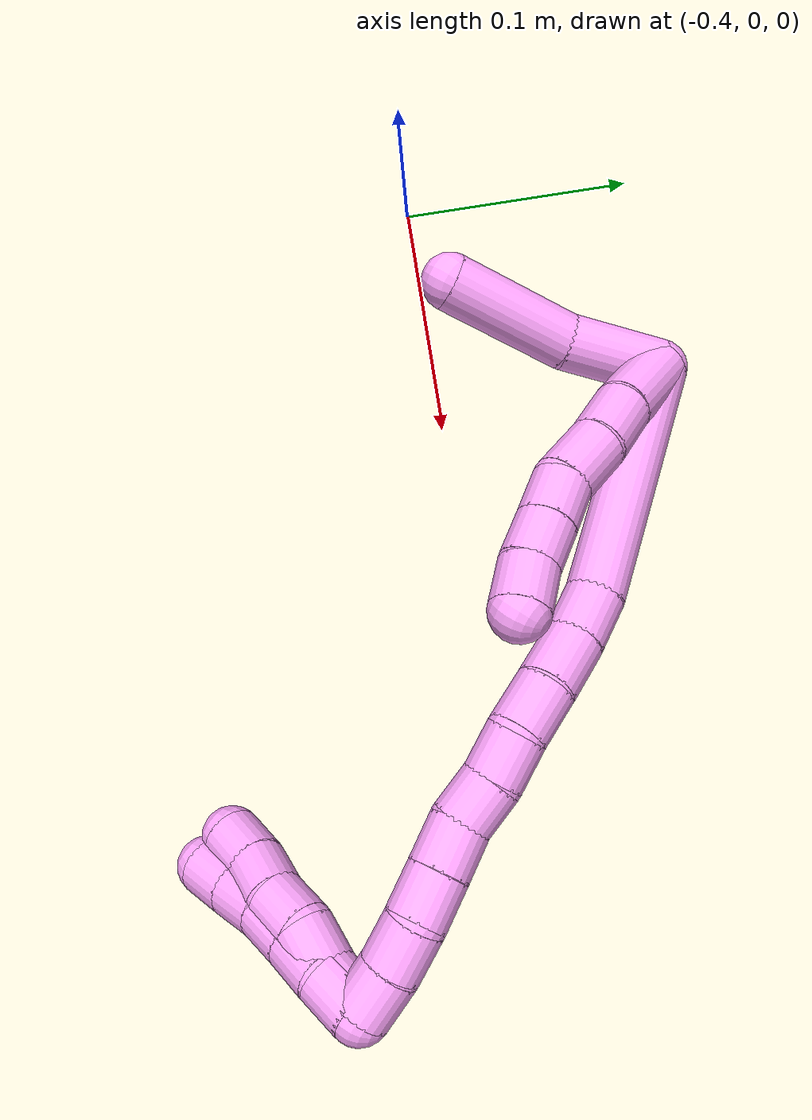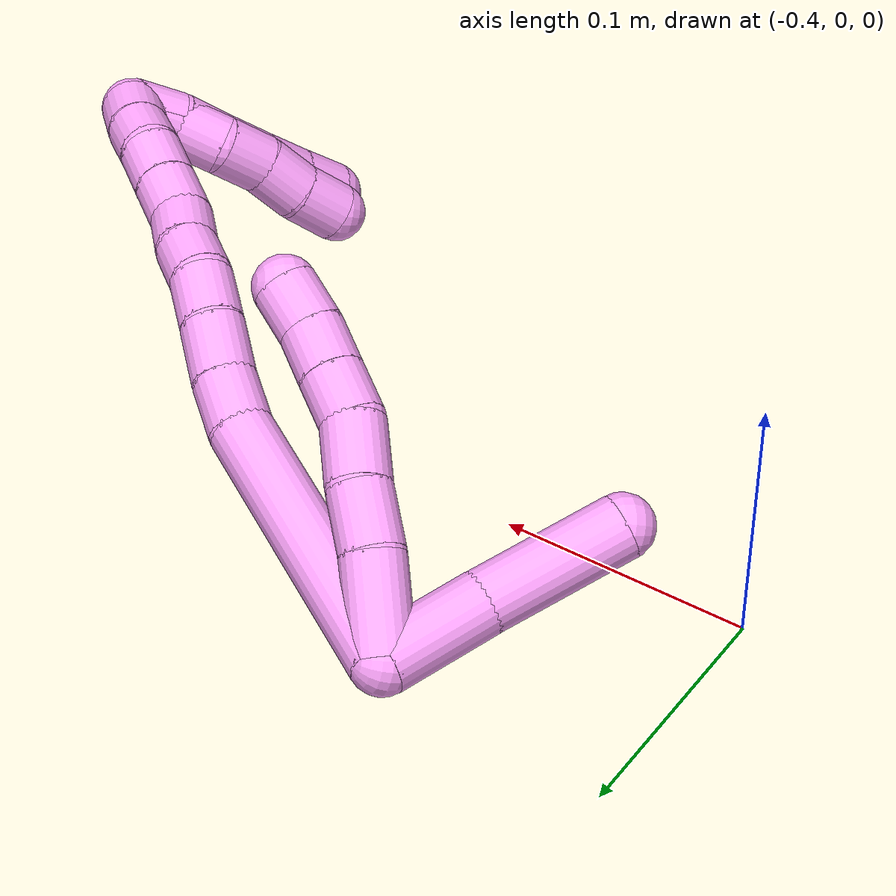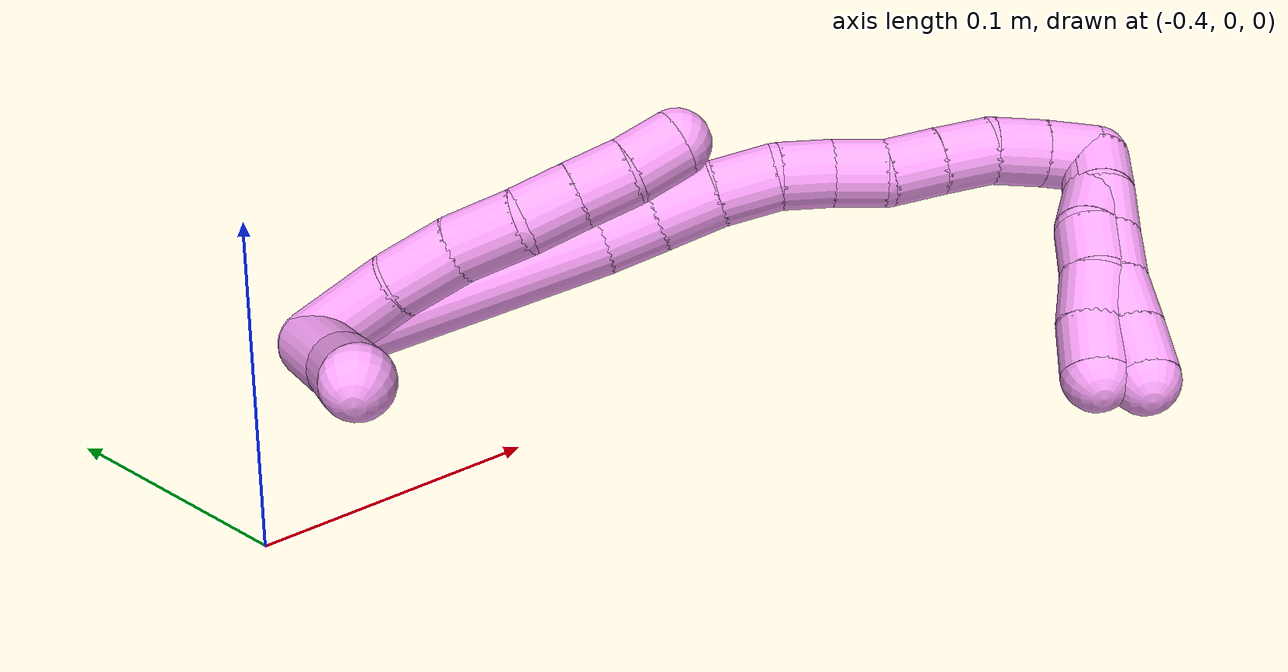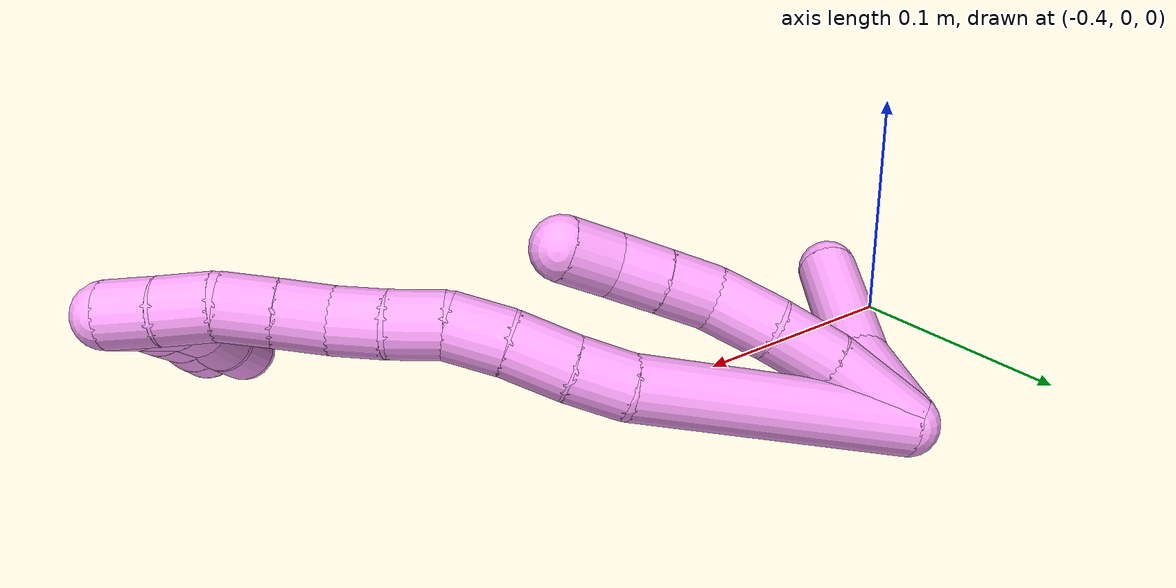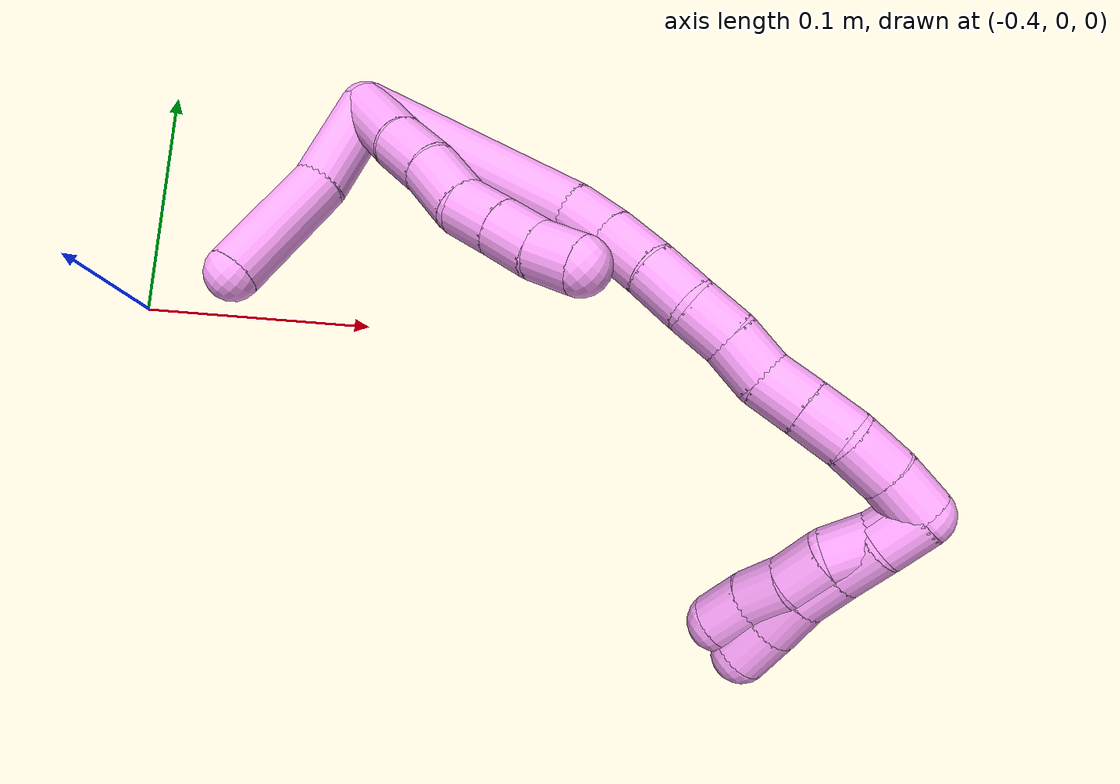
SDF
<sdf version="1.7">
 <world name="default">
  <model name="4">
   <static>0</static>
   <link name="4">
    <collision name="collision-cylinder-e_1_2_8">
     <pose>0.003543 -0.018728 0.001934 1.46791 0.186019 0.167892</pose>
     <geometry><cylinder><radius>0.0125</radius><length>0.038315</length></cylinder></geometry>
     <surface>
      <friction><ode><mu>1.16</mu><mu2>1.16</mu2><slip1>0</slip1><slip2>0</slip2></ode></friction>
      <contact><ode><kp>1e+06</kp><kd>1</kd><max_vel>0</max_vel><min_depth>0.001</min_depth></ode></contact>
     </surface>
    </collision>
    <visual name="visual-cylinder-e_1_2_8">
     <pose>0.003543 -0.018728 0.001934 1.46791 0.186019 0.167892</pose>
     <geometry><cylinder><radius>0.0125</radius><length>0.038315</length></cylinder></geometry>
     <material><ambient>1 0.65098 0.996078 1</ambient></material>
    </visual>
    <collision name="collision-cylinder-e_2_8_9">
     <pose>0.010996 -0.04936 0.0059 1.40167 0.313078 0.26477</pose>
     <geometry><cylinder><radius>0.0125</radius><length>0.025388</length></cylinder></geometry>
     <surface>
      <friction><ode><mu>1.16</mu><mu2>1.16</mu2><slip1>0</slip1><slip2>0</slip2></ode></friction>
      <contact><ode><kp>1e+06</kp><kd>1</kd><max_vel>0</max_vel><min_depth>0.001</min_depth></ode></contact>
     </surface>
    </collision>
    <visual name="visual-cylinder-e_2_8_9">
     <pose>0.010996 -0.04936 0.0059 1.40167 0.313078 0.26477</pose>
     <geometry><cylinder><radius>0.0125</radius><length>0.025388</length></cylinder></geometry>
     <material><ambient>1 0.65098 0.996078 1</ambient></material>
    </visual>
    <collision name="collision-cylinder-e_3_9_10">
     <pose>0.019763 -0.07322 0.008281 1.54164 0.385761 0.374937</pose>
     <geometry><cylinder><radius>0.0125</radius><length>0.02582</length></cylinder></geometry>
     <surface>
      <friction><ode><mu>1.16</mu><mu2>1.16</mu2><slip1>0</slip1><slip2>0</slip2></ode></friction>
      <contact><ode><kp>1e+06</kp><kd>1</kd><max_vel>0</max_vel><min_depth>0.001</min_depth></ode></contact>
     </surface>
    </collision>
    <visual name="visual-cylinder-e_3_9_10">
     <pose>0.019763 -0.07322 0.008281 1.54164 0.385761 0.374937</pose>
     <geometry><cylinder><radius>0.0125</radius><length>0.02582</length></cylinder></geometry>
     <material><ambient>1 0.65098 0.996078 1</ambient></material>
    </visual>
    <collision name="collision-cylinder-e_4_10_11">
     <pose>0.029295 -0.09373 0.01174 1.22208 0.474498 0.335566</pose>
     <geometry><cylinder><radius>0.0125</radius><length>0.020464</length></cylinder></geometry>
     <surface>
      <friction><ode><mu>1.16</mu><mu2>1.16</mu2><slip1>0</slip1><slip2>0</slip2></ode></friction>
      <contact><ode><kp>1e+06</kp><kd>1</kd><max_vel>0</max_vel><min_depth>0.001</min_depth></ode></contact>
     </surface>
    </collision>
    <visual name="visual-cylinder-e_4_10_11">
     <pose>0.029295 -0.09373 0.01174 1.22208 0.474498 0.335566</pose>
     <geometry><cylinder><radius>0.0125</radius><length>0.020464</length></cylinder></geometry>
     <material><ambient>1 0.65098 0.996078 1</ambient></material>
    </visual>
    <collision name="collision-cylinder-e_5_11_12">
     <pose>0.038654 -0.110641 0.017723 1.23967 0.487403 0.351237</pose>
     <geometry><cylinder><radius>0.0125</radius><length>0.020004</length></cylinder></geometry>
     <surface>
      <friction><ode><mu>1.16</mu><mu2>1.16</mu2><slip1>0</slip1><slip2>0</slip2></ode></friction>
      <contact><ode><kp>1e+06</kp><kd>1</kd><max_vel>0</max_vel><min_depth>0.001</min_depth></ode></contact>
     </surface>
    </collision>
    <visual name="visual-cylinder-e_5_11_12">
     <pose>0.038654 -0.110641 0.017723 1.23967 0.487403 0.351237</pose>
     <geometry><cylinder><radius>0.0125</radius><length>0.020004</length></cylinder></geometry>
     <material><ambient>1 0.65098 0.996078 1</ambient></material>
    </visual>
    <collision name="collision-cylinder-e_6_12_6">
     <pose>0.047616 -0.126912 0.024974 1.06547 0.441719 0.263224</pose>
     <geometry><cylinder><radius>0.0125</radius><length>0.020009</length></cylinder></geometry>
     <surface>
      <friction><ode><mu>1.16</mu><mu2>1.16</mu2><slip1>0</slip1><slip2>0</slip2></ode></friction>
      <contact><ode><kp>1e+06</kp><kd>1</kd><max_vel>0</max_vel><min_depth>0.001</min_depth></ode></contact>
     </surface>
    </collision>
    <visual name="visual-cylinder-e_6_12_6">
     <pose>0.047616 -0.126912 0.024974 1.06547 0.441719 0.263224</pose>
     <geometry><cylinder><radius>0.0125</radius><length>0.020009</length></cylinder></geometry>
     <material><ambient>1 0.65098 0.996078 1</ambient></material>
    </visual>
    <collision name="collision-cylinder-e_1_2_13">
     <pose>-0.000425 -0.011804 -0.017999 2.56113 -0.019736 -0.06606</pose>
     <geometry><cylinder><radius>0.0125</radius><length>0.043057</length></cylinder></geometry>
     <surface>
      <friction><ode><mu>1.16</mu><mu2>1.16</mu2><slip1>0</slip1><slip2>0</slip2></ode></friction>
      <contact><ode><kp>1e+06</kp><kd>1</kd><max_vel>0</max_vel><min_depth>0.001</min_depth></ode></contact>
     </surface>
    </collision>
    <visual name="visual-cylinder-e_1_2_13">
     <pose>-0.000425 -0.011804 -0.017999 2.56113 -0.019736 -0.06606</pose>
     <geometry><cylinder><radius>0.0125</radius><length>0.043057</length></cylinder></geometry>
     <material><ambient>1 0.65098 0.996078 1</ambient></material>
    </visual>
    <collision name="collision-cylinder-e_2_13_5">
     <pose>-0.00748 -0.03903 -0.058994 2.55086 -0.235032 -0.740267</pose>
     <geometry><cylinder><radius>0.0125</radius><length>0.056943</length></cylinder></geometry>
     <surface>
      <friction><ode><mu>1.16</mu><mu2>1.16</mu2><slip1>0</slip1><slip2>0</slip2></ode></friction>
      <contact><ode><kp>1e+06</kp><kd>1</kd><max_vel>0</max_vel><min_depth>0.001</min_depth></ode></contact>
     </surface>
    </collision>
    <visual name="visual-cylinder-e_2_13_5">
     <pose>-0.00748 -0.03903 -0.058994 2.55086 -0.235032 -0.740267</pose>
     <geometry><cylinder><radius>0.0125</radius><length>0.056943</length></cylinder></geometry>
     <material><ambient>1 0.65098 0.996078 1</ambient></material>
    </visual>
    <collision name="collision-cylinder-e_1_2_14">
     <pose>0.032478 -0.040913 0.018867 1.1387 0.624603 0.407568</pose>
     <geometry><cylinder><radius>0.0125</radius><length>0.111079</length></cylinder></geometry>
     <surface>
      <friction><ode><mu>1.16</mu><mu2>1.16</mu2><slip1>0</slip1><slip2>0</slip2></ode></friction>
      <contact><ode><kp>1e+06</kp><kd>1</kd><max_vel>0</max_vel><min_depth>0.001</min_depth></ode></contact>
     </surface>
    </collision>
    <visual name="visual-cylinder-e_1_2_14">
     <pose>0.032478 -0.040913 0.018867 1.1387 0.624603 0.407568</pose>
     <geometry><cylinder><radius>0.0125</radius><length>0.111079</length></cylinder></geometry>
     <material><ambient>1 0.65098 0.996078 1</ambient></material>
    </visual>
    <collision name="collision-cylinder-e_2_14_15">
     <pose>0.070275 -0.091276 0.040077 1.32786 0.49997 0.394353</pose>
     <geometry><cylinder><radius>0.0125</radius><length>0.022188</length></cylinder></geometry>
     <surface>
      <friction><ode><mu>1.16</mu><mu2>1.16</mu2><slip1>0</slip1><slip2>0</slip2></ode></friction>
      <contact><ode><kp>1e+06</kp><kd>1</kd><max_vel>0</max_vel><min_depth>0.001</min_depth></ode></contact>
     </surface>
    </collision>
    <visual name="visual-cylinder-e_2_14_15">
     <pose>0.070275 -0.091276 0.040077 1.32786 0.49997 0.394353</pose>
     <geometry><cylinder><radius>0.0125</radius><length>0.022188</length></cylinder></geometry>
     <material><ambient>1 0.65098 0.996078 1</ambient></material>
    </visual>
    <collision name="collision-cylinder-e_3_15_16">
     <pose>0.080798 -0.111393 0.044076 1.41663 0.44928 0.386575</pose>
     <geometry><cylinder><radius>0.0125</radius><length>0.023968</length></cylinder></geometry>
     <surface>
      <friction><ode><mu>1.16</mu><mu2>1.16</mu2><slip1>0</slip1><slip2>0</slip2></ode></friction>
      <contact><ode><kp>1e+06</kp><kd>1</kd><max_vel>0</max_vel><min_depth>0.001</min_depth></ode></contact>
     </surface>
    </collision>
    <visual name="visual-cylinder-e_3_15_16">
     <pose>0.080798 -0.111393 0.044076 1.41663 0.44928 0.386575</pose>
     <geometry><cylinder><radius>0.0125</radius><length>0.023968</length></cylinder></geometry>
     <material><ambient>1 0.65098 0.996078 1</ambient></material>
    </visual>
    <collision name="collision-cylinder-e_4_16_17">
     <pose>0.092022 -0.131454 0.04684 1.45356 0.566665 0.506648</pose>
     <geometry><cylinder><radius>0.0125</radius><length>0.022423</length></cylinder></geometry>
     <surface>
      <friction><ode><mu>1.16</mu><mu2>1.16</mu2><slip1>0</slip1><slip2>0</slip2></ode></friction>
      <contact><ode><kp>1e+06</kp><kd>1</kd><max_vel>0</max_vel><min_depth>0.001</min_depth></ode></contact>
     </surface>
    </collision>
    <visual name="visual-cylinder-e_4_16_17">
     <pose>0.092022 -0.131454 0.04684 1.45356 0.566665 0.506648</pose>
     <geometry><cylinder><radius>0.0125</radius><length>0.022423</length></cylinder></geometry>
     <material><ambient>1 0.65098 0.996078 1</ambient></material>
    </visual>
    <collision name="collision-cylinder-e_5_17_18">
     <pose>0.105562 -0.14756 0.049069 1.40511 0.835328 0.718814</pose>
     <geometry><cylinder><radius>0.0125</radius><length>0.020286</length></cylinder></geometry>
     <surface>
      <friction><ode><mu>1.16</mu><mu2>1.16</mu2><slip1>0</slip1><slip2>0</slip2></ode></friction>
      <contact><ode><kp>1e+06</kp><kd>1</kd><max_vel>0</max_vel><min_depth>0.001</min_depth></ode></contact>
     </surface>
    </collision>
    <visual name="visual-cylinder-e_5_17_18">
     <pose>0.105562 -0.14756 0.049069 1.40511 0.835328 0.718814</pose>
     <geometry><cylinder><radius>0.0125</radius><length>0.020286</length></cylinder></geometry>
     <material><ambient>1 0.65098 0.996078 1</ambient></material>
    </visual>
    <collision name="collision-cylinder-e_6_18_19">
     <pose>0.120322 -0.161171 0.049716 1.63959 0.808315 0.859279</pose>
     <geometry><cylinder><radius>0.0125</radius><length>0.020022</length></cylinder></geometry>
     <surface>
      <friction><ode><mu>1.16</mu><mu2>1.16</mu2><slip1>0</slip1><slip2>0</slip2></ode></friction>
      <contact><ode><kp>1e+06</kp><kd>1</kd><max_vel>0</max_vel><min_depth>0.001</min_depth></ode></contact>
     </surface>
    </collision>
    <visual name="visual-cylinder-e_6_18_19">
     <pose>0.120322 -0.161171 0.049716 1.63959 0.808315 0.859279</pose>
     <geometry><cylinder><radius>0.0125</radius><length>0.020022</length></cylinder></geometry>
     <material><ambient>1 0.65098 0.996078 1</ambient></material>
    </visual>
    <collision name="collision-cylinder-e_7_19_20">
     <pose>0.133913 -0.17553 0.051266 1.30581 0.687825 0.534702</pose>
     <geometry><cylinder><radius>0.0125</radius><length>0.020011</length></cylinder></geometry>
     <surface>
      <friction><ode><mu>1.16</mu><mu2>1.16</mu2><slip1>0</slip1><slip2>0</slip2></ode></friction>
      <contact><ode><kp>1e+06</kp><kd>1</kd><max_vel>0</max_vel><min_depth>0.001</min_depth></ode></contact>
     </surface>
    </collision>
    <visual name="visual-cylinder-e_7_19_20">
     <pose>0.133913 -0.17553 0.051266 1.30581 0.687825 0.534702</pose>
     <geometry><cylinder><radius>0.0125</radius><length>0.020011</length></cylinder></geometry>
     <material><ambient>1 0.65098 0.996078 1</ambient></material>
    </visual>
    <collision name="collision-cylinder-e_8_20_21">
     <pose>0.146763 -0.19037 0.055158 1.32286 0.706549 0.559033</pose>
     <geometry><cylinder><radius>0.0125</radius><length>0.020017</length></cylinder></geometry>
     <surface>
      <friction><ode><mu>1.16</mu><mu2>1.16</mu2><slip1>0</slip1><slip2>0</slip2></ode></friction>
      <contact><ode><kp>1e+06</kp><kd>1</kd><max_vel>0</max_vel><min_depth>0.001</min_depth></ode></contact>
     </surface>
    </collision>
    <visual name="visual-cylinder-e_8_20_21">
     <pose>0.146763 -0.19037 0.055158 1.32286 0.706549 0.559033</pose>
     <geometry><cylinder><radius>0.0125</radius><length>0.020017</length></cylinder></geometry>
     <material><ambient>1 0.65098 0.996078 1</ambient></material>
    </visual>
    <collision name="collision-cylinder-e_9_21_22">
     <pose>0.161361 -0.203572 0.057766 1.44437 0.943791 0.845025</pose>
     <geometry><cylinder><radius>0.0125</radius><length>0.020005</length></cylinder></geometry>
     <surface>
      <friction><ode><mu>1.16</mu><mu2>1.16</mu2><slip1>0</slip1><slip2>0</slip2></ode></friction>
      <contact><ode><kp>1e+06</kp><kd>1</kd><max_vel>0</max_vel><min_depth>0.001</min_depth></ode></contact>
     </surface>
    </collision>
    <visual name="visual-cylinder-e_9_21_22">
     <pose>0.161361 -0.203572 0.057766 1.44437 0.943791 0.845025</pose>
     <geometry><cylinder><radius>0.0125</radius><length>0.020005</length></cylinder></geometry>
     <material><ambient>1 0.65098 0.996078 1</ambient></material>
    </visual>
    <collision name="collision-cylinder-e_10_22_1">
     <pose>0.177534 -0.215281 0.058118 1.6367 0.939671 0.993943</pose>
     <geometry><cylinder><radius>0.0125</radius><length>0.02</length></cylinder></geometry>
     <surface>
      <friction><ode><mu>1.16</mu><mu2>1.16</mu2><slip1>0</slip1><slip2>0</slip2></ode></friction>
      <contact><ode><kp>1e+06</kp><kd>1</kd><max_vel>0</max_vel><min_depth>0.001</min_depth></ode></contact>
     </surface>
    </collision>
    <visual name="visual-cylinder-e_10_22_1">
     <pose>0.177534 -0.215281 0.058118 1.6367 0.939671 0.993943</pose>
     <geometry><cylinder><radius>0.0125</radius><length>0.02</length></cylinder></geometry>
     <material><ambient>1 0.65098 0.996078 1</ambient></material>
    </visual>
    <collision name="collision-cylinder-e_1_1_23">
     <pose>0.18574 -0.21913 0.04794 -2.93627 0.013189 -0.127851</pose>
     <geometry><cylinder><radius>0.0125</radius><length>0.02</length></cylinder></geometry>
     <surface>
      <friction><ode><mu>1.16</mu><mu2>1.16</mu2><slip1>0</slip1><slip2>0</slip2></ode></friction>
      <contact><ode><kp>1e+06</kp><kd>1</kd><max_vel>0</max_vel><min_depth>0.001</min_depth></ode></contact>
     </surface>
    </collision>
    <visual name="visual-cylinder-e_1_1_23">
     <pose>0.18574 -0.21913 0.04794 -2.93627 0.013189 -0.127851</pose>
     <geometry><cylinder><radius>0.0125</radius><length>0.02</length></cylinder></geometry>
     <material><ambient>1 0.65098 0.996078 1</ambient></material>
    </visual>
    <collision name="collision-cylinder-e_2_23_24">
     <pose>0.184397 -0.213855 0.028805 -2.80817 -0.147955 0.829735</pose>
     <geometry><cylinder><radius>0.0125</radius><length>0.02</length></cylinder></geometry>
     <surface>
      <friction><ode><mu>1.16</mu><mu2>1.16</mu2><slip1>0</slip1><slip2>0</slip2></ode></friction>
      <contact><ode><kp>1e+06</kp><kd>1</kd><max_vel>0</max_vel><min_depth>0.001</min_depth></ode></contact>
     </surface>
    </collision>
    <visual name="visual-cylinder-e_2_23_24">
     <pose>0.184397 -0.213855 0.028805 -2.80817 -0.147955 0.829735</pose>
     <geometry><cylinder><radius>0.0125</radius><length>0.02</length></cylinder></geometry>
     <material><ambient>1 0.65098 0.996078 1</ambient></material>
    </visual>
    <collision name="collision-cylinder-e_3_24_25">
     <pose>0.184503 -0.208164 0.009894 -2.89045 0.158586 -1.1236</pose>
     <geometry><cylinder><radius>0.0125</radius><length>0.02</length></cylinder></geometry>
     <surface>
      <friction><ode><mu>1.16</mu><mu2>1.16</mu2><slip1>0</slip1><slip2>0</slip2></ode></friction>
      <contact><ode><kp>1e+06</kp><kd>1</kd><max_vel>0</max_vel><min_depth>0.001</min_depth></ode></contact>
     </surface>
    </collision>
    <visual name="visual-cylinder-e_3_24_25">
     <pose>0.184503 -0.208164 0.009894 -2.89045 0.158586 -1.1236</pose>
     <geometry><cylinder><radius>0.0125</radius><length>0.02</length></cylinder></geometry>
     <material><ambient>1 0.65098 0.996078 1</ambient></material>
    </visual>
    <collision name="collision-cylinder-e_4_25_26">
     <pose>0.18755 -0.201309 -0.008529 -2.68051 0.147403 -0.609551</pose>
     <geometry><cylinder><radius>0.0125</radius><length>0.02</length></cylinder></geometry>
     <surface>
      <friction><ode><mu>1.16</mu><mu2>1.16</mu2><slip1>0</slip1><slip2>0</slip2></ode></friction>
      <contact><ode><kp>1e+06</kp><kd>1</kd><max_vel>0</max_vel><min_depth>0.001</min_depth></ode></contact>
     </surface>
    </collision>
    <visual name="visual-cylinder-e_4_25_26">
     <pose>0.18755 -0.201309 -0.008529 -2.68051 0.147403 -0.609551</pose>
     <geometry><cylinder><radius>0.0125</radius><length>0.02</length></cylinder></geometry>
     <material><ambient>1 0.65098 0.996078 1</ambient></material>
    </visual>
    <collision name="collision-cylinder-e_5_26_4">
     <pose>0.19079 -0.194021 -0.026797 -2.84381 0.178068 -1.07365</pose>
     <geometry><cylinder><radius>0.0125</radius><length>0.02</length></cylinder></geometry>
     <surface>
      <friction><ode><mu>1.16</mu><mu2>1.16</mu2><slip1>0</slip1><slip2>0</slip2></ode></friction>
      <contact><ode><kp>1e+06</kp><kd>1</kd><max_vel>0</max_vel><min_depth>0.001</min_depth></ode></contact>
     </surface>
    </collision>
    <visual name="visual-cylinder-e_5_26_4">
     <pose>0.19079 -0.194021 -0.026797 -2.84381 0.178068 -1.07365</pose>
     <geometry><cylinder><radius>0.0125</radius><length>0.02</length></cylinder></geometry>
     <material><ambient>1 0.65098 0.996078 1</ambient></material>
    </visual>
    <collision name="collision-cylinder-e_1_1_27">
     <pose>0.185764 -0.219687 0.047841 -2.99281 0.015607 -0.208647</pose>
     <geometry><cylinder><radius>0.0125</radius><length>0.02</length></cylinder></geometry>
     <surface>
      <friction><ode><mu>1.16</mu><mu2>1.16</mu2><slip1>0</slip1><slip2>0</slip2></ode></friction>
      <contact><ode><kp>1e+06</kp><kd>1</kd><max_vel>0</max_vel><min_depth>0.001</min_depth></ode></contact>
     </surface>
    </collision>
    <visual name="visual-cylinder-e_1_1_27">
     <pose>0.185764 -0.219687 0.047841 -2.99281 0.015607 -0.208647</pose>
     <geometry><cylinder><radius>0.0125</radius><length>0.02</length></cylinder></geometry>
     <material><ambient>1 0.65098 0.996078 1</ambient></material>
    </visual>
    <collision name="collision-cylinder-e_2_27_28">
     <pose>0.187506 -0.215589 0.028432 -2.87342 0.159313 -1.06869</pose>
     <geometry><cylinder><radius>0.0125</radius><length>0.02</length></cylinder></geometry>
     <surface>
      <friction><ode><mu>1.16</mu><mu2>1.16</mu2><slip1>0</slip1><slip2>0</slip2></ode></friction>
      <contact><ode><kp>1e+06</kp><kd>1</kd><max_vel>0</max_vel><min_depth>0.001</min_depth></ode></contact>
     </surface>
    </collision>
    <visual name="visual-cylinder-e_2_27_28">
     <pose>0.187506 -0.215589 0.028432 -2.87342 0.159313 -1.06869</pose>
     <geometry><cylinder><radius>0.0125</radius><length>0.02</length></cylinder></geometry>
     <material><ambient>1 0.65098 0.996078 1</ambient></material>
    </visual>
    <collision name="collision-cylinder-e_3_28_29">
     <pose>0.190797 -0.210633 0.00934 -2.90187 0.171235 -1.23829</pose>
     <geometry><cylinder><radius>0.0125</radius><length>0.02</length></cylinder></geometry>
     <surface>
      <friction><ode><mu>1.16</mu><mu2>1.16</mu2><slip1>0</slip1><slip2>0</slip2></ode></friction>
      <contact><ode><kp>1e+06</kp><kd>1</kd><max_vel>0</max_vel><min_depth>0.001</min_depth></ode></contact>
     </surface>
    </collision>
    <visual name="visual-cylinder-e_3_28_29">
     <pose>0.190797 -0.210633 0.00934 -2.90187 0.171235 -1.23829</pose>
     <geometry><cylinder><radius>0.0125</radius><length>0.02</length></cylinder></geometry>
     <material><ambient>1 0.65098 0.996078 1</ambient></material>
    </visual>
    <collision name="collision-cylinder-e_4_29_30">
     <pose>0.195846 -0.206666 -0.009515 -2.96802 0.341062 -2.20593</pose>
     <geometry><cylinder><radius>0.0125</radius><length>0.02</length></cylinder></geometry>
     <surface>
      <friction><ode><mu>1.16</mu><mu2>1.16</mu2><slip1>0</slip1><slip2>0</slip2></ode></friction>
      <contact><ode><kp>1e+06</kp><kd>1</kd><max_vel>0</max_vel><min_depth>0.001</min_depth></ode></contact>
     </surface>
    </collision>
    <visual name="visual-cylinder-e_4_29_30">
     <pose>0.195846 -0.206666 -0.009515 -2.96802 0.341062 -2.20593</pose>
     <geometry><cylinder><radius>0.0125</radius><length>0.02</length></cylinder></geometry>
     <material><ambient>1 0.65098 0.996078 1</ambient></material>
    </visual>
    <collision name="collision-cylinder-e_5_30_3">
     <pose>0.201981 -0.203457 -0.028269 -2.97614 0.282767 -2.08659</pose>
     <geometry><cylinder><radius>0.0125</radius><length>0.02</length></cylinder></geometry>
     <surface>
      <friction><ode><mu>1.16</mu><mu2>1.16</mu2><slip1>0</slip1><slip2>0</slip2></ode></friction>
      <contact><ode><kp>1e+06</kp><kd>1</kd><max_vel>0</max_vel><min_depth>0.001</min_depth></ode></contact>
     </surface>
    </collision>
    <visual name="visual-cylinder-e_5_30_3">
     <pose>0.201981 -0.203457 -0.028269 -2.97614 0.282767 -2.08659</pose>
     <geometry><cylinder><radius>0.0125</radius><length>0.02</length></cylinder></geometry>
     <material><ambient>1 0.65098 0.996078 1</ambient></material>
    </visual>
    <collision name="collision-sphere-3">
     <pose>0.204771 -0.201875 -0.037741 0 -0 0</pose>
     <geometry><sphere><radius>0.0125</radius></sphere></geometry>
     <surface>
      <friction><ode><mu>1.16</mu><mu2>1.16</mu2><slip1>0</slip1><slip2>0</slip2></ode></friction>
      <contact><ode><kp>1e+06</kp><kd>1</kd><max_vel>0</max_vel><min_depth>0.001</min_depth></ode></contact>
     </surface>
    </collision>
    <visual name="visual-sphere-3">
     <pose>0.204771 -0.201875 -0.037741 0 -0 0</pose>
     <geometry><sphere><radius>0.0125</radius></sphere></geometry>
     <material><ambient>1 0.65098 0.996078 1</ambient></material>
    </visual>
    <collision name="collision-sphere-30">
     <pose>0.199191 -0.205038 -0.018797 0 -0 0</pose>
     <geometry><sphere><radius>0.0125</radius></sphere></geometry>
     <surface>
      <friction><ode><mu>1.16</mu><mu2>1.16</mu2><slip1>0</slip1><slip2>0</slip2></ode></friction>
      <contact><ode><kp>1e+06</kp><kd>1</kd><max_vel>0</max_vel><min_depth>0.001</min_depth></ode></contact>
     </surface>
    </collision>
    <visual name="visual-sphere-30">
     <pose>0.199191 -0.205038 -0.018797 0 -0 0</pose>
     <geometry><sphere><radius>0.0125</radius></sphere></geometry>
     <material><ambient>1 0.65098 0.996078 1</ambient></material>
    </visual>
    <collision name="collision-sphere-29">
     <pose>0.192501 -0.208293 -0.000232 0 -0 0</pose>
     <geometry><sphere><radius>0.0125</radius></sphere></geometry>
     <surface>
      <friction><ode><mu>1.16</mu><mu2>1.16</mu2><slip1>0</slip1><slip2>0</slip2></ode></friction>
      <contact><ode><kp>1e+06</kp><kd>1</kd><max_vel>0</max_vel><min_depth>0.001</min_depth></ode></contact>
     </surface>
    </collision>
    <visual name="visual-sphere-29">
     <pose>0.192501 -0.208293 -0.000232 0 -0 0</pose>
     <geometry><sphere><radius>0.0125</radius></sphere></geometry>
     <material><ambient>1 0.65098 0.996078 1</ambient></material>
    </visual>
    <collision name="collision-sphere-28">
     <pose>0.189093 -0.212972 0.018912 0 -0 0</pose>
     <geometry><sphere><radius>0.0125</radius></sphere></geometry>
     <surface>
      <friction><ode><mu>1.16</mu><mu2>1.16</mu2><slip1>0</slip1><slip2>0</slip2></ode></friction>
      <contact><ode><kp>1e+06</kp><kd>1</kd><max_vel>0</max_vel><min_depth>0.001</min_depth></ode></contact>
     </surface>
    </collision>
    <visual name="visual-sphere-28">
     <pose>0.189093 -0.212972 0.018912 0 -0 0</pose>
     <geometry><sphere><radius>0.0125</radius></sphere></geometry>
     <material><ambient>1 0.65098 0.996078 1</ambient></material>
    </visual>
    <collision name="collision-sphere-27">
     <pose>0.18592 -0.218205 0.037952 0 -0 0</pose>
     <geometry><sphere><radius>0.0125</radius></sphere></geometry>
     <surface>
      <friction><ode><mu>1.16</mu><mu2>1.16</mu2><slip1>0</slip1><slip2>0</slip2></ode></friction>
      <contact><ode><kp>1e+06</kp><kd>1</kd><max_vel>0</max_vel><min_depth>0.001</min_depth></ode></contact>
     </surface>
    </collision>
    <visual name="visual-sphere-27">
     <pose>0.18592 -0.218205 0.037952 0 -0 0</pose>
     <geometry><sphere><radius>0.0125</radius></sphere></geometry>
     <material><ambient>1 0.65098 0.996078 1</ambient></material>
    </visual>
    <collision name="collision-sphere-4">
     <pose>0.192562 -0.191133 -0.036205 0 -0 0</pose>
     <geometry><sphere><radius>0.0125</radius></sphere></geometry>
     <surface>
      <friction><ode><mu>1.16</mu><mu2>1.16</mu2><slip1>0</slip1><slip2>0</slip2></ode></friction>
      <contact><ode><kp>1e+06</kp><kd>1</kd><max_vel>0</max_vel><min_depth>0.001</min_depth></ode></contact>
     </surface>
    </collision>
    <visual name="visual-sphere-4">
     <pose>0.192562 -0.191133 -0.036205 0 -0 0</pose>
     <geometry><sphere><radius>0.0125</radius></sphere></geometry>
     <material><ambient>1 0.65098 0.996078 1</ambient></material>
    </visual>
    <collision name="collision-sphere-26">
     <pose>0.189019 -0.196908 -0.017388 0 -0 0</pose>
     <geometry><sphere><radius>0.0125</radius></sphere></geometry>
     <surface>
      <friction><ode><mu>1.16</mu><mu2>1.16</mu2><slip1>0</slip1><slip2>0</slip2></ode></friction>
      <contact><ode><kp>1e+06</kp><kd>1</kd><max_vel>0</max_vel><min_depth>0.001</min_depth></ode></contact>
     </surface>
    </collision>
    <visual name="visual-sphere-26">
     <pose>0.189019 -0.196908 -0.017388 0 -0 0</pose>
     <geometry><sphere><radius>0.0125</radius></sphere></geometry>
     <material><ambient>1 0.65098 0.996078 1</ambient></material>
    </visual>
    <collision name="collision-sphere-25">
     <pose>0.186082 -0.20571 0.000329 0 -0 0</pose>
     <geometry><sphere><radius>0.0125</radius></sphere></geometry>
     <surface>
      <friction><ode><mu>1.16</mu><mu2>1.16</mu2><slip1>0</slip1><slip2>0</slip2></ode></friction>
      <contact><ode><kp>1e+06</kp><kd>1</kd><max_vel>0</max_vel><min_depth>0.001</min_depth></ode></contact>
     </surface>
    </collision>
    <visual name="visual-sphere-25">
     <pose>0.186082 -0.20571 0.000329 0 -0 0</pose>
     <geometry><sphere><radius>0.0125</radius></sphere></geometry>
     <material><ambient>1 0.65098 0.996078 1</ambient></material>
    </visual>
    <collision name="collision-sphere-24">
     <pose>0.182923 -0.210618 0.019459 0 -0 0</pose>
     <geometry><sphere><radius>0.0125</radius></sphere></geometry>
     <surface>
      <friction><ode><mu>1.16</mu><mu2>1.16</mu2><slip1>0</slip1><slip2>0</slip2></ode></friction>
      <contact><ode><kp>1e+06</kp><kd>1</kd><max_vel>0</max_vel><min_depth>0.001</min_depth></ode></contact>
     </surface>
    </collision>
    <visual name="visual-sphere-24">
     <pose>0.182923 -0.210618 0.019459 0 -0 0</pose>
     <geometry><sphere><radius>0.0125</radius></sphere></geometry>
     <material><ambient>1 0.65098 0.996078 1</ambient></material>
    </visual>
    <collision name="collision-sphere-23">
     <pose>0.185872 -0.217092 0.038151 0 -0 0</pose>
     <geometry><sphere><radius>0.0125</radius></sphere></geometry>
     <surface>
      <friction><ode><mu>1.16</mu><mu2>1.16</mu2><slip1>0</slip1><slip2>0</slip2></ode></friction>
      <contact><ode><kp>1e+06</kp><kd>1</kd><max_vel>0</max_vel><min_depth>0.001</min_depth></ode></contact>
     </surface>
    </collision>
    <visual name="visual-sphere-23">
     <pose>0.185872 -0.217092 0.038151 0 -0 0</pose>
     <geometry><sphere><radius>0.0125</radius></sphere></geometry>
     <material><ambient>1 0.65098 0.996078 1</ambient></material>
    </visual>
    <collision name="collision-sphere-1">
     <pose>0.185608 -0.221169 0.057729 0 -0 0</pose>
     <geometry><sphere><radius>0.0125</radius></sphere></geometry>
     <surface>
      <friction><ode><mu>1.16</mu><mu2>1.16</mu2><slip1>0</slip1><slip2>0</slip2></ode></friction>
      <contact><ode><kp>1e+06</kp><kd>1</kd><max_vel>0</max_vel><min_depth>0.001</min_depth></ode></contact>
     </surface>
    </collision>
    <visual name="visual-sphere-1">
     <pose>0.185608 -0.221169 0.057729 0 -0 0</pose>
     <geometry><sphere><radius>0.0125</radius></sphere></geometry>
     <material><ambient>1 0.65098 0.996078 1</ambient></material>
    </visual>
    <collision name="collision-sphere-22">
     <pose>0.16946 -0.209394 0.058506 0 -0 0</pose>
     <geometry><sphere><radius>0.0125</radius></sphere></geometry>
     <surface>
      <friction><ode><mu>1.16</mu><mu2>1.16</mu2><slip1>0</slip1><slip2>0</slip2></ode></friction>
      <contact><ode><kp>1e+06</kp><kd>1</kd><max_vel>0</max_vel><min_depth>0.001</min_depth></ode></contact>
     </surface>
    </collision>
    <visual name="visual-sphere-22">
     <pose>0.16946 -0.209394 0.058506 0 -0 0</pose>
     <geometry><sphere><radius>0.0125</radius></sphere></geometry>
     <material><ambient>1 0.65098 0.996078 1</ambient></material>
    </visual>
    <collision name="collision-sphere-21">
     <pose>0.153261 -0.19775 0.057026 0 -0 0</pose>
     <geometry><sphere><radius>0.0125</radius></sphere></geometry>
     <surface>
      <friction><ode><mu>1.16</mu><mu2>1.16</mu2><slip1>0</slip1><slip2>0</slip2></ode></friction>
      <contact><ode><kp>1e+06</kp><kd>1</kd><max_vel>0</max_vel><min_depth>0.001</min_depth></ode></contact>
     </surface>
    </collision>
    <visual name="visual-sphere-21">
     <pose>0.153261 -0.19775 0.057026 0 -0 0</pose>
     <geometry><sphere><radius>0.0125</radius></sphere></geometry>
     <material><ambient>1 0.65098 0.996078 1</ambient></material>
    </visual>
    <collision name="collision-sphere-12">
     <pose>0.043339 -0.118998 0.020596 0 -0 0</pose>
     <geometry><sphere><radius>0.0125</radius></sphere></geometry>
     <surface>
      <friction><ode><mu>1.16</mu><mu2>1.16</mu2><slip1>0</slip1><slip2>0</slip2></ode></friction>
      <contact><ode><kp>1e+06</kp><kd>1</kd><max_vel>0</max_vel><min_depth>0.001</min_depth></ode></contact>
     </surface>
    </collision>
    <visual name="visual-sphere-12">
     <pose>0.043339 -0.118998 0.020596 0 -0 0</pose>
     <geometry><sphere><radius>0.0125</radius></sphere></geometry>
     <material><ambient>1 0.65098 0.996078 1</ambient></material>
    </visual>
    <collision name="collision-sphere-11">
     <pose>0.03397 -0.102284 0.01485 0 -0 0</pose>
     <geometry><sphere><radius>0.0125</radius></sphere></geometry>
     <surface>
      <friction><ode><mu>1.16</mu><mu2>1.16</mu2><slip1>0</slip1><slip2>0</slip2></ode></friction>
      <contact><ode><kp>1e+06</kp><kd>1</kd><max_vel>0</max_vel><min_depth>0.001</min_depth></ode></contact>
     </surface>
    </collision>
    <visual name="visual-sphere-11">
     <pose>0.03397 -0.102284 0.01485 0 -0 0</pose>
     <geometry><sphere><radius>0.0125</radius></sphere></geometry>
     <material><ambient>1 0.65098 0.996078 1</ambient></material>
    </visual>
    <collision name="collision-sphere-10">
     <pose>0.024621 -0.085176 0.00863 0 -0 0</pose>
     <geometry><sphere><radius>0.0125</radius></sphere></geometry>
     <surface>
      <friction><ode><mu>1.16</mu><mu2>1.16</mu2><slip1>0</slip1><slip2>0</slip2></ode></friction>
      <contact><ode><kp>1e+06</kp><kd>1</kd><max_vel>0</max_vel><min_depth>0.001</min_depth></ode></contact>
     </surface>
    </collision>
    <visual name="visual-sphere-10">
     <pose>0.024621 -0.085176 0.00863 0 -0 0</pose>
     <geometry><sphere><radius>0.0125</radius></sphere></geometry>
     <material><ambient>1 0.65098 0.996078 1</ambient></material>
    </visual>
    <collision name="collision-sphere-9">
     <pose>0.014906 -0.061264 0.007933 0 -0 0</pose>
     <geometry><sphere><radius>0.0125</radius></sphere></geometry>
     <surface>
      <friction><ode><mu>1.16</mu><mu2>1.16</mu2><slip1>0</slip1><slip2>0</slip2></ode></friction>
      <contact><ode><kp>1e+06</kp><kd>1</kd><max_vel>0</max_vel><min_depth>0.001</min_depth></ode></contact>
     </surface>
    </collision>
    <visual name="visual-sphere-9">
     <pose>0.014906 -0.061264 0.007933 0 -0 0</pose>
     <geometry><sphere><radius>0.0125</radius></sphere></geometry>
     <material><ambient>1 0.65098 0.996078 1</ambient></material>
    </visual>
    <collision name="collision-sphere-2">
     <geometry><sphere><radius>0.0125</radius></sphere></geometry>
     <surface>
      <friction><ode><mu>1.16</mu><mu2>1.16</mu2><slip1>0</slip1><slip2>0</slip2></ode></friction>
      <contact><ode><kp>1e+06</kp><kd>1</kd><max_vel>0</max_vel><min_depth>0.001</min_depth></ode></contact>
     </surface>
    </collision>
    <visual name="visual-sphere-2">
     <geometry><sphere><radius>0.0125</radius></sphere></geometry>
     <material><ambient>1 0.65098 0.996078 1</ambient></material>
    </visual>
    <collision name="collision-sphere-19">
     <pose>0.127561 -0.168069 0.049241 0 -0 0</pose>
     <geometry><sphere><radius>0.0125</radius></sphere></geometry>
     <surface>
      <friction><ode><mu>1.16</mu><mu2>1.16</mu2><slip1>0</slip1><slip2>0</slip2></ode></friction>
      <contact><ode><kp>1e+06</kp><kd>1</kd><max_vel>0</max_vel><min_depth>0.001</min_depth></ode></contact>
     </surface>
    </collision>
    <visual name="visual-sphere-19">
     <pose>0.127561 -0.168069 0.049241 0 -0 0</pose>
     <geometry><sphere><radius>0.0125</radius></sphere></geometry>
     <material><ambient>1 0.65098 0.996078 1</ambient></material>
    </visual>
    <collision name="collision-sphere-8">
     <pose>0.007086 -0.037455 0.003867 0 -0 0</pose>
     <geometry><sphere><radius>0.0125</radius></sphere></geometry>
     <surface>
      <friction><ode><mu>1.16</mu><mu2>1.16</mu2><slip1>0</slip1><slip2>0</slip2></ode></friction>
      <contact><ode><kp>1e+06</kp><kd>1</kd><max_vel>0</max_vel><min_depth>0.001</min_depth></ode></contact>
     </surface>
    </collision>
    <visual name="visual-sphere-8">
     <pose>0.007086 -0.037455 0.003867 0 -0 0</pose>
     <geometry><sphere><radius>0.0125</radius></sphere></geometry>
     <material><ambient>1 0.65098 0.996078 1</ambient></material>
    </visual>
    <collision name="collision-sphere-6">
     <pose>0.051893 -0.134826 0.029353 0 -0 0</pose>
     <geometry><sphere><radius>0.0125</radius></sphere></geometry>
     <surface>
      <friction><ode><mu>1.16</mu><mu2>1.16</mu2><slip1>0</slip1><slip2>0</slip2></ode></friction>
      <contact><ode><kp>1e+06</kp><kd>1</kd><max_vel>0</max_vel><min_depth>0.001</min_depth></ode></contact>
     </surface>
    </collision>
    <visual name="visual-sphere-6">
     <pose>0.051893 -0.134826 0.029353 0 -0 0</pose>
     <geometry><sphere><radius>0.0125</radius></sphere></geometry>
     <material><ambient>1 0.65098 0.996078 1</ambient></material>
    </visual>
    <collision name="collision-sphere-13">
     <pose>-0.00085 -0.023608 -0.035998 0 -0 0</pose>
     <geometry><sphere><radius>0.0125</radius></sphere></geometry>
     <surface>
      <friction><ode><mu>1.16</mu><mu2>1.16</mu2><slip1>0</slip1><slip2>0</slip2></ode></friction>
      <contact><ode><kp>1e+06</kp><kd>1</kd><max_vel>0</max_vel><min_depth>0.001</min_depth></ode></contact>
     </surface>
    </collision>
    <visual name="visual-sphere-13">
     <pose>-0.00085 -0.023608 -0.035998 0 -0 0</pose>
     <geometry><sphere><radius>0.0125</radius></sphere></geometry>
     <material><ambient>1 0.65098 0.996078 1</ambient></material>
    </visual>
    <collision name="collision-sphere-5">
     <pose>-0.01411 -0.054452 -0.081991 0 -0 0</pose>
     <geometry><sphere><radius>0.0125</radius></sphere></geometry>
     <surface>
      <friction><ode><mu>1.16</mu><mu2>1.16</mu2><slip1>0</slip1><slip2>0</slip2></ode></friction>
      <contact><ode><kp>1e+06</kp><kd>1</kd><max_vel>0</max_vel><min_depth>0.001</min_depth></ode></contact>
     </surface>
    </collision>
    <visual name="visual-sphere-5">
     <pose>-0.01411 -0.054452 -0.081991 0 -0 0</pose>
     <geometry><sphere><radius>0.0125</radius></sphere></geometry>
     <material><ambient>1 0.65098 0.996078 1</ambient></material>
    </visual>
    <collision name="collision-sphere-14">
     <pose>0.064957 -0.081825 0.037734 0 -0 0</pose>
     <geometry><sphere><radius>0.0125</radius></sphere></geometry>
     <surface>
      <friction><ode><mu>1.16</mu><mu2>1.16</mu2><slip1>0</slip1><slip2>0</slip2></ode></friction>
      <contact><ode><kp>1e+06</kp><kd>1</kd><max_vel>0</max_vel><min_depth>0.001</min_depth></ode></contact>
     </surface>
    </collision>
    <visual name="visual-sphere-14">
     <pose>0.064957 -0.081825 0.037734 0 -0 0</pose>
     <geometry><sphere><radius>0.0125</radius></sphere></geometry>
     <material><ambient>1 0.65098 0.996078 1</ambient></material>
    </visual>
    <collision name="collision-sphere-15">
     <pose>0.075594 -0.100726 0.042419 0 -0 0</pose>
     <geometry><sphere><radius>0.0125</radius></sphere></geometry>
     <surface>
      <friction><ode><mu>1.16</mu><mu2>1.16</mu2><slip1>0</slip1><slip2>0</slip2></ode></friction>
      <contact><ode><kp>1e+06</kp><kd>1</kd><max_vel>0</max_vel><min_depth>0.001</min_depth></ode></contact>
     </surface>
    </collision>
    <visual name="visual-sphere-15">
     <pose>0.075594 -0.100726 0.042419 0 -0 0</pose>
     <geometry><sphere><radius>0.0125</radius></sphere></geometry>
     <material><ambient>1 0.65098 0.996078 1</ambient></material>
    </visual>
    <collision name="collision-sphere-16">
     <pose>0.086003 -0.12206 0.045734 0 -0 0</pose>
     <geometry><sphere><radius>0.0125</radius></sphere></geometry>
     <surface>
      <friction><ode><mu>1.16</mu><mu2>1.16</mu2><slip1>0</slip1><slip2>0</slip2></ode></friction>
      <contact><ode><kp>1e+06</kp><kd>1</kd><max_vel>0</max_vel><min_depth>0.001</min_depth></ode></contact>
     </surface>
    </collision>
    <visual name="visual-sphere-16">
     <pose>0.086003 -0.12206 0.045734 0 -0 0</pose>
     <geometry><sphere><radius>0.0125</radius></sphere></geometry>
     <material><ambient>1 0.65098 0.996078 1</ambient></material>
    </visual>
    <collision name="collision-sphere-17">
     <pose>0.098041 -0.140848 0.047947 0 -0 0</pose>
     <geometry><sphere><radius>0.0125</radius></sphere></geometry>
     <surface>
      <friction><ode><mu>1.16</mu><mu2>1.16</mu2><slip1>0</slip1><slip2>0</slip2></ode></friction>
      <contact><ode><kp>1e+06</kp><kd>1</kd><max_vel>0</max_vel><min_depth>0.001</min_depth></ode></contact>
     </surface>
    </collision>
    <visual name="visual-sphere-17">
     <pose>0.098041 -0.140848 0.047947 0 -0 0</pose>
     <geometry><sphere><radius>0.0125</radius></sphere></geometry>
     <material><ambient>1 0.65098 0.996078 1</ambient></material>
    </visual>
    <collision name="collision-sphere-18">
     <pose>0.113083 -0.154272 0.050192 0 -0 0</pose>
     <geometry><sphere><radius>0.0125</radius></sphere></geometry>
     <surface>
      <friction><ode><mu>1.16</mu><mu2>1.16</mu2><slip1>0</slip1><slip2>0</slip2></ode></friction>
      <contact><ode><kp>1e+06</kp><kd>1</kd><max_vel>0</max_vel><min_depth>0.001</min_depth></ode></contact>
     </surface>
    </collision>
    <visual name="visual-sphere-18">
     <pose>0.113083 -0.154272 0.050192 0 -0 0</pose>
     <geometry><sphere><radius>0.0125</radius></sphere></geometry>
     <material><ambient>1 0.65098 0.996078 1</ambient></material>
    </visual>
    <collision name="collision-sphere-20">
     <pose>0.140265 -0.18299 0.05329 0 -0 0</pose>
     <geometry><sphere><radius>0.0125</radius></sphere></geometry>
     <surface>
      <friction><ode><mu>1.16</mu><mu2>1.16</mu2><slip1>0</slip1><slip2>0</slip2></ode></friction>
      <contact><ode><kp>1e+06</kp><kd>1</kd><max_vel>0</max_vel><min_depth>0.001</min_depth></ode></contact>
     </surface>
    </collision>
    <visual name="visual-sphere-20">
     <pose>0.140265 -0.18299 0.05329 0 -0 0</pose>
     <geometry><sphere><radius>0.0125</radius></sphere></geometry>
     <material><ambient>1 0.65098 0.996078 1</ambient></material>
    </visual>
    <inertial>
     <pose>0.08909 -0.118962 0.014548 0 -0 0</pose>
     <mass>0.75</mass>
     <inertia><ixx>0.000185</ixx><ixy>0</ixy><ixz>0</ixz><iyy>6e-05</iyy><iyz>0</iyz><izz>2.8e-05</izz></inertia>
    </inertial>
   </link>
   <pose>-0.309672 0.098017 0.012429 -1.16998 0.700148 -0.490958</pose>
  </model>
 </world>
</sdf>
